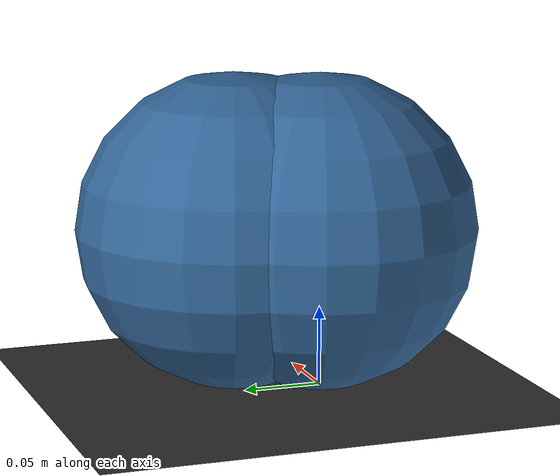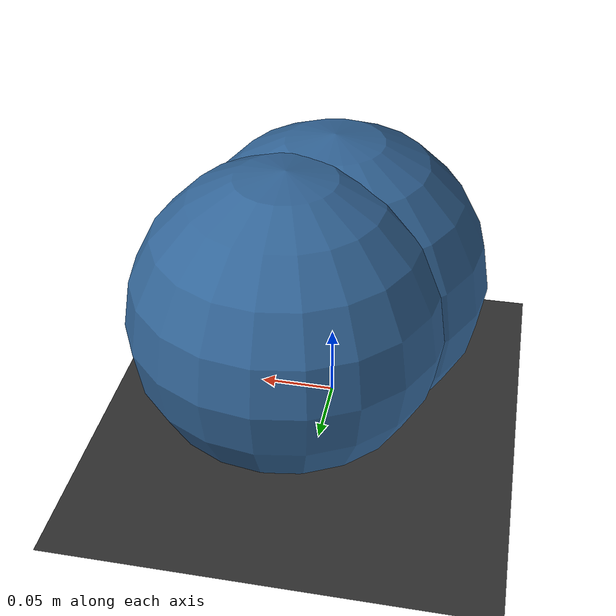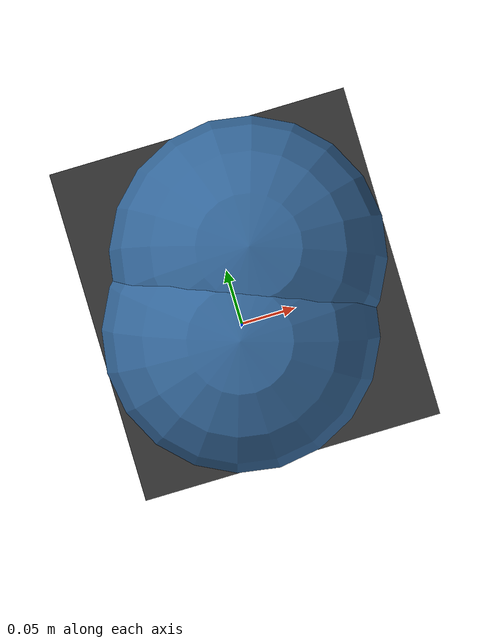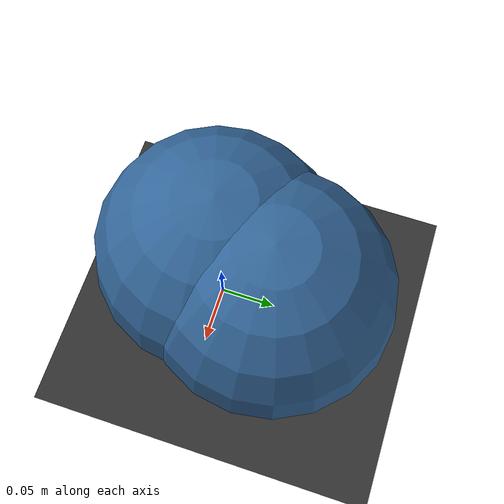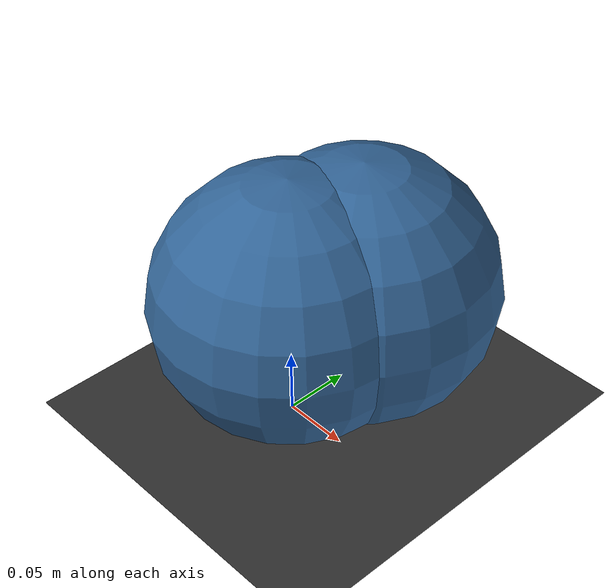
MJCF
<mujoco model="single_contact">
    <option gravity="0 0 -9.81" integrator="Euler" timestep="0.01"/>

    <worldbody>
        <!-- Static plane -->
        <geom name="floor" type="plane" pos="0 0 0" size="50 50 0.1" rgba="0.2 0.2 0.2 1" condim="3"/>

        <!-- Sphere resting just on top of the plane -->
        <body name="sphere_0" pos="0 0 0.1"> <!-- z = radius of the sphere -->
            <geom type="sphere" size="0.1" rgba="0.2 0.4 0.6 1"/>
            <freejoint/>
        </body>
        <!-- Sphere resting just on top of the plane -->
        <body name="sphere_1" pos="0.02 0.05 0.1"> <!-- z = radius of the sphere -->
            <geom type="sphere" size="0.1" rgba="0.2 0.4 0.6 1"/>
            <freejoint/>
        </body>
    </worldbody>
</mujoco>
